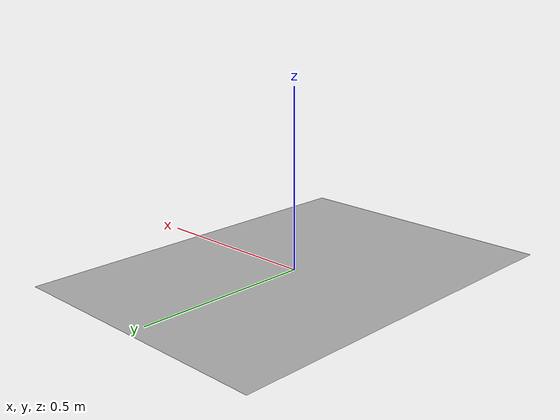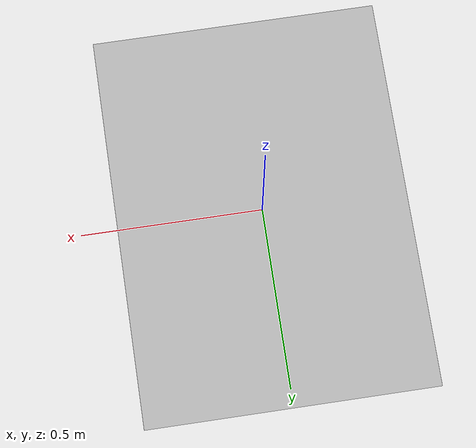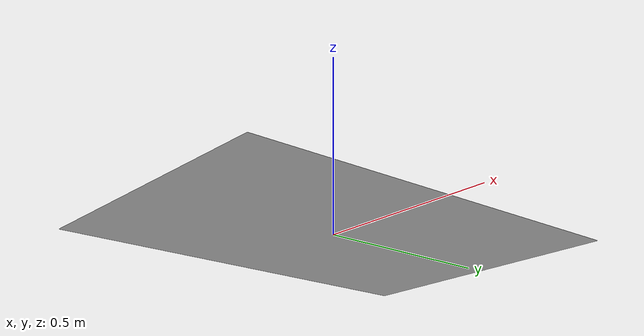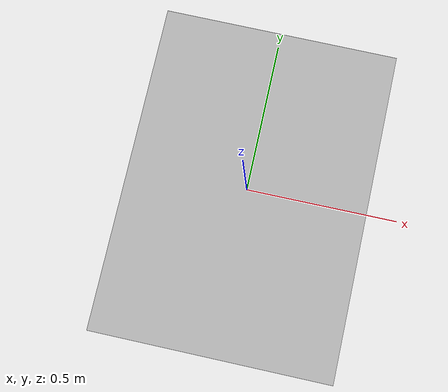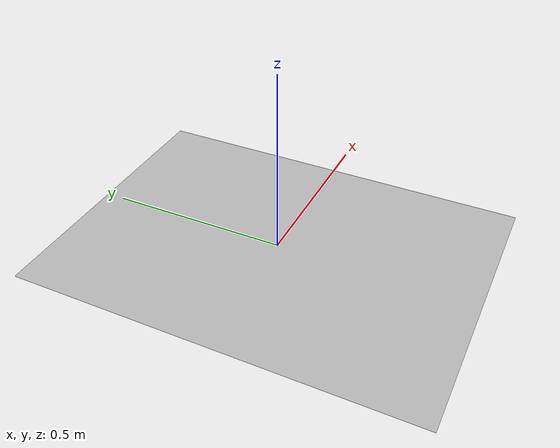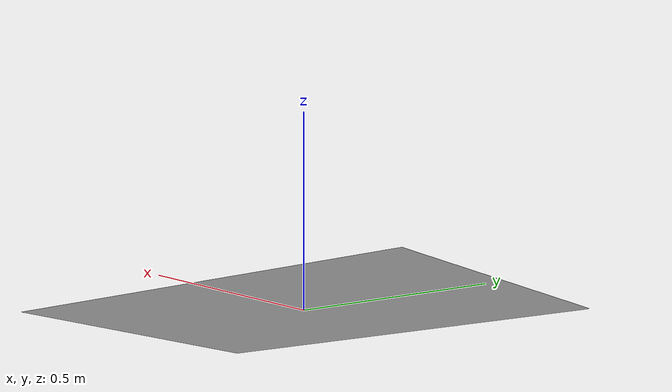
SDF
<?xml version='1.0'?>
<sdf version="1.6">
<model name="checkerboard_plane">
  <static>true</static>
    <link name="link">
      <collision name="collision">
        <geometry>
          <mesh>
            <scale>0.4 0.55 0.5</scale>
            <uri>model://checkerboard_plane1/meshes/checkerboard_plane.dae</uri>
          </mesh>
        </geometry>
      </collision>
      <visual name="visual">
        <geometry>
          <mesh>
            <scale>0.4 0.55 0.5</scale>
            <uri>model://checkerboard_plane1/meshes/checkerboard_plane.dae</uri>
          </mesh>
        </geometry>
      </visual>
    </link>
  </model>
</sdf>
